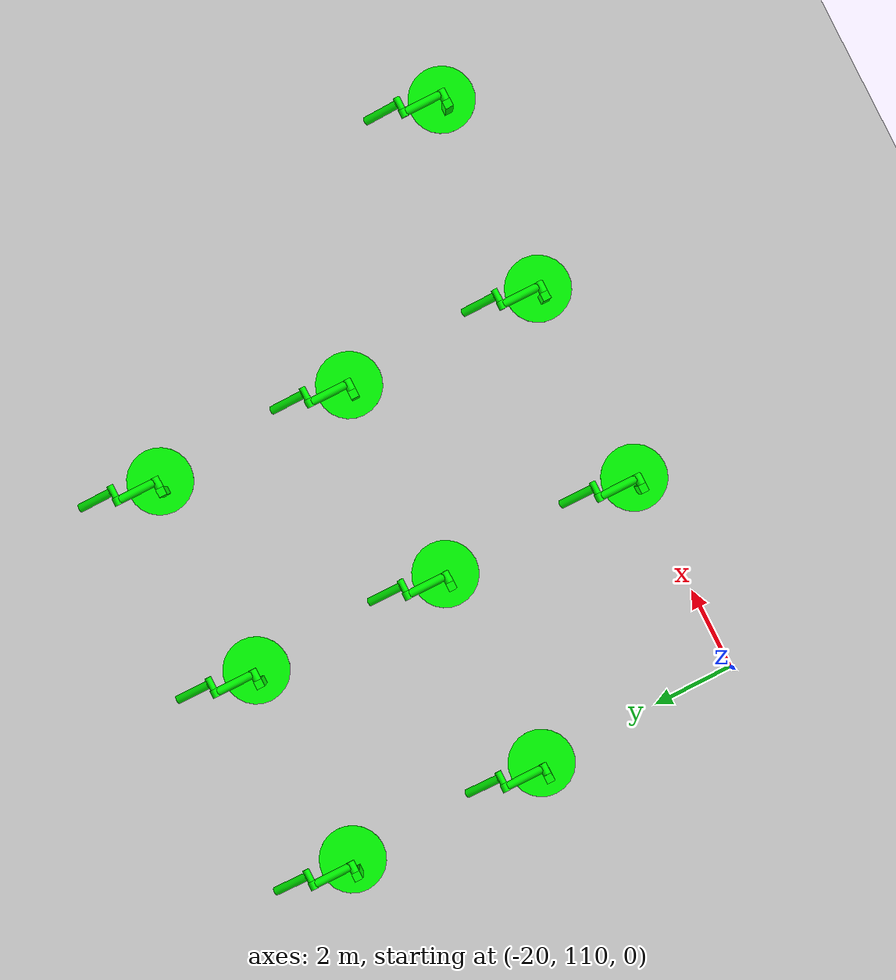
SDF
<sdf version="1.6">
 <world name="double_pendulums">
  <model name="ground_plane">
   <static>true</static>
   <link name="link">
    <collision name="collision">
     <geometry><plane><normal>0 0 1</normal><size>100 100</size></plane></geometry>
    </collision>
    <visual name="visual">
     <geometry><plane><normal>0 0 1</normal><size>100 100</size></plane></geometry>
     <material>
      <ambient>0.8 0.8 0.8 1</ambient>
      <diffuse>0.8 0.8 0.8 1</diffuse>
      <specular>0.8 0.8 0.8 1</specular>
     </material>
    </visual>
   </link>
  </model>
  <model name="dbl_pendulum_557">
   <pose>-15 110 0 0 0 0</pose>
   <link name="base">
    <inertial><mass>100</mass></inertial>
    <visual name="vis_plate_on_ground">
     <pose>0 0 0.01 0 0 0</pose>
     <geometry><cylinder><radius>0.8</radius><length>0.02</length></cylinder></geometry>
     <material><ambient>0 1 0 1</ambient><diffuse>0 1 0 1</diffuse><specular>0 1 0 1</specular></material>
    </visual>
    <visual name="vis_pole">
     <pose>-0.275 0 1.1 0 0 0</pose>
     <geometry><box><size>0.2 0.2 2.2</size></box></geometry>
     <material><ambient>0 1 0 1</ambient><diffuse>0 1 0 1</diffuse><specular>0 1 0 1</specular></material>
    </visual>
    <collision name="col_plate_on_ground">
     <pose>0 0 0.01 0 0 0</pose>
     <geometry><cylinder><radius>0.8</radius><length>0.02</length></cylinder></geometry>
    </collision>
    <collision name="col_pole">
     <pose>-0.275 0 1.1 0 0 0</pose>
     <geometry><box><size>0.2 0.2 2.2</size></box></geometry>
    </collision>
   </link>
   <link name="upper_link">
    <pose>0 0 2.1 -1.5708 0 0</pose>
    <inertial><pose>0 0 0.5 0 0 0</pose></inertial>
    <visual name="vis_upper_joint">
     <pose>-0.05 0 0 0 1.5708 0</pose>
     <geometry><cylinder><radius>0.1</radius><length>0.3</length></cylinder></geometry>
     <material><ambient>0 1 0 1</ambient><diffuse>0 1 0 1</diffuse><specular>0 1 0 1</specular></material>
    </visual>
    <visual name="vis_lower_joint">
     <pose>0 0 1.0 0 1.5708 0</pose>
     <geometry><cylinder><radius>0.1</radius><length>0.2</length></cylinder></geometry>
     <material><ambient>0 1 0 1</ambient><diffuse>0 1 0 1</diffuse><specular>0 1 0 1</specular></material>
    </visual>
    <visual name="vis_cylinder">
     <pose>0 0 0.5 0 0 0</pose>
     <geometry><cylinder><radius>0.1</radius><length>0.9</length></cylinder></geometry>
     <material><ambient>0 1 0 1</ambient><diffuse>0 1 0 1</diffuse><specular>0 1 0 1</specular></material>
    </visual>
    <collision name="col_upper_joint">
     <pose>-0.05 0 0 0 1.5708 0</pose>
     <geometry><cylinder><radius>0.1</radius><length>0.3</length></cylinder></geometry>
    </collision>
    <collision name="col_lower_joint">
     <pose>0 0 1.0 0 1.5708 0</pose>
     <geometry><cylinder><radius>0.1</radius><length>0.2</length></cylinder></geometry>
    </collision>
    <collision name="col_cylinder">
     <pose>0 0 0.5 0 0 0</pose>
     <geometry><cylinder><radius>0.1</radius><length>0.9</length></cylinder></geometry>
    </collision>
   </link>
   <link name="lower_link">
    <pose>0.25 1.0 2.1 -2 0 0</pose>
    <inertial><pose>0 0 0.5 0 0 0</pose></inertial>
    <visual name="vis_lower_joint">
     <pose>0 0 0 0 1.5708 0</pose>
     <geometry><cylinder><radius>0.08</radius><length>0.3</length></cylinder></geometry>
     <material><ambient>0 1 0 1</ambient><diffuse>0 1 0 1</diffuse><specular>0 1 0 1</specular></material>
    </visual>
    <visual name="vis_cylinder">
     <pose>0 0 0.5 0 0 0</pose>
     <geometry><cylinder><radius>0.1</radius><length>0.9</length></cylinder></geometry>
     <material><ambient>0 1 0 1</ambient><diffuse>0 1 0 1</diffuse><specular>0 1 0 1</specular></material>
    </visual>
    <collision name="col_lower_joint">
     <pose>0 0 0 0 1.5708 0</pose>
     <geometry><cylinder><radius>0.08</radius><length>0.3</length></cylinder></geometry>
    </collision>
    <collision name="col_cylinder">
     <pose>0 0 0.5 0 0 0</pose>
     <geometry><cylinder><radius>0.1</radius><length>0.9</length></cylinder></geometry>
    </collision>
   </link>
   <joint name="upper_joint" type="revolute">
    <parent>base</parent>
    <child>upper_link</child>
    <axis><xyz>1.0 0 0</xyz></axis>
   </joint>
   <joint name="lower_joint" type="revolute">
    <parent>upper_link</parent>
    <child>lower_link</child>
    <axis><xyz>1.0 0 0</xyz></axis>
   </joint>
  </model>
  <model name="dbl_pendulum_558">
   <pose>-10 110 0 0 0 0</pose>
   <link name="base">
    <inertial><mass>100</mass></inertial>
    <visual name="vis_plate_on_ground">
     <pose>0 0 0.01 0 0 0</pose>
     <geometry><cylinder><radius>0.8</radius><length>0.02</length></cylinder></geometry>
     <material><ambient>0 1 0 1</ambient><diffuse>0 1 0 1</diffuse><specular>0 1 0 1</specular></material>
    </visual>
    <visual name="vis_pole">
     <pose>-0.275 0 1.1 0 0 0</pose>
     <geometry><box><size>0.2 0.2 2.2</size></box></geometry>
     <material><ambient>0 1 0 1</ambient><diffuse>0 1 0 1</diffuse><specular>0 1 0 1</specular></material>
    </visual>
    <collision name="col_plate_on_ground">
     <pose>0 0 0.01 0 0 0</pose>
     <geometry><cylinder><radius>0.8</radius><length>0.02</length></cylinder></geometry>
    </collision>
    <collision name="col_pole">
     <pose>-0.275 0 1.1 0 0 0</pose>
     <geometry><box><size>0.2 0.2 2.2</size></box></geometry>
    </collision>
   </link>
   <link name="upper_link">
    <pose>0 0 2.1 -1.5708 0 0</pose>
    <inertial><pose>0 0 0.5 0 0 0</pose></inertial>
    <visual name="vis_upper_joint">
     <pose>-0.05 0 0 0 1.5708 0</pose>
     <geometry><cylinder><radius>0.1</radius><length>0.3</length></cylinder></geometry>
     <material><ambient>0 1 0 1</ambient><diffuse>0 1 0 1</diffuse><specular>0 1 0 1</specular></material>
    </visual>
    <visual name="vis_lower_joint">
     <pose>0 0 1.0 0 1.5708 0</pose>
     <geometry><cylinder><radius>0.1</radius><length>0.2</length></cylinder></geometry>
     <material><ambient>0 1 0 1</ambient><diffuse>0 1 0 1</diffuse><specular>0 1 0 1</specular></material>
    </visual>
    <visual name="vis_cylinder">
     <pose>0 0 0.5 0 0 0</pose>
     <geometry><cylinder><radius>0.1</radius><length>0.9</length></cylinder></geometry>
     <material><ambient>0 1 0 1</ambient><diffuse>0 1 0 1</diffuse><specular>0 1 0 1</specular></material>
    </visual>
    <collision name="col_upper_joint">
     <pose>-0.05 0 0 0 1.5708 0</pose>
     <geometry><cylinder><radius>0.1</radius><length>0.3</length></cylinder></geometry>
    </collision>
    <collision name="col_lower_joint">
     <pose>0 0 1.0 0 1.5708 0</pose>
     <geometry><cylinder><radius>0.1</radius><length>0.2</length></cylinder></geometry>
    </collision>
    <collision name="col_cylinder">
     <pose>0 0 0.5 0 0 0</pose>
     <geometry><cylinder><radius>0.1</radius><length>0.9</length></cylinder></geometry>
    </collision>
   </link>
   <link name="lower_link">
    <pose>0.25 1.0 2.1 -2 0 0</pose>
    <inertial><pose>0 0 0.5 0 0 0</pose></inertial>
    <visual name="vis_lower_joint">
     <pose>0 0 0 0 1.5708 0</pose>
     <geometry><cylinder><radius>0.08</radius><length>0.3</length></cylinder></geometry>
     <material><ambient>0 1 0 1</ambient><diffuse>0 1 0 1</diffuse><specular>0 1 0 1</specular></material>
    </visual>
    <visual name="vis_cylinder">
     <pose>0 0 0.5 0 0 0</pose>
     <geometry><cylinder><radius>0.1</radius><length>0.9</length></cylinder></geometry>
     <material><ambient>0 1 0 1</ambient><diffuse>0 1 0 1</diffuse><specular>0 1 0 1</specular></material>
    </visual>
    <collision name="col_lower_joint">
     <pose>0 0 0 0 1.5708 0</pose>
     <geometry><cylinder><radius>0.08</radius><length>0.3</length></cylinder></geometry>
    </collision>
    <collision name="col_cylinder">
     <pose>0 0 0.5 0 0 0</pose>
     <geometry><cylinder><radius>0.1</radius><length>0.9</length></cylinder></geometry>
    </collision>
   </link>
   <joint name="upper_joint" type="revolute">
    <parent>base</parent>
    <child>upper_link</child>
    <axis><xyz>1.0 0 0</xyz></axis>
   </joint>
   <joint name="lower_joint" type="revolute">
    <parent>upper_link</parent>
    <child>lower_link</child>
    <axis><xyz>1.0 0 0</xyz></axis>
   </joint>
  </model>
  <model name="dbl_pendulum_559">
   <pose>-5 110 0 0 0 0</pose>
   <link name="base">
    <inertial><mass>100</mass></inertial>
    <visual name="vis_plate_on_ground">
     <pose>0 0 0.01 0 0 0</pose>
     <geometry><cylinder><radius>0.8</radius><length>0.02</length></cylinder></geometry>
     <material><ambient>0 1 0 1</ambient><diffuse>0 1 0 1</diffuse><specular>0 1 0 1</specular></material>
    </visual>
    <visual name="vis_pole">
     <pose>-0.275 0 1.1 0 0 0</pose>
     <geometry><box><size>0.2 0.2 2.2</size></box></geometry>
     <material><ambient>0 1 0 1</ambient><diffuse>0 1 0 1</diffuse><specular>0 1 0 1</specular></material>
    </visual>
    <collision name="col_plate_on_ground">
     <pose>0 0 0.01 0 0 0</pose>
     <geometry><cylinder><radius>0.8</radius><length>0.02</length></cylinder></geometry>
    </collision>
    <collision name="col_pole">
     <pose>-0.275 0 1.1 0 0 0</pose>
     <geometry><box><size>0.2 0.2 2.2</size></box></geometry>
    </collision>
   </link>
   <link name="upper_link">
    <pose>0 0 2.1 -1.5708 0 0</pose>
    <inertial><pose>0 0 0.5 0 0 0</pose></inertial>
    <visual name="vis_upper_joint">
     <pose>-0.05 0 0 0 1.5708 0</pose>
     <geometry><cylinder><radius>0.1</radius><length>0.3</length></cylinder></geometry>
     <material><ambient>0 1 0 1</ambient><diffuse>0 1 0 1</diffuse><specular>0 1 0 1</specular></material>
    </visual>
    <visual name="vis_lower_joint">
     <pose>0 0 1.0 0 1.5708 0</pose>
     <geometry><cylinder><radius>0.1</radius><length>0.2</length></cylinder></geometry>
     <material><ambient>0 1 0 1</ambient><diffuse>0 1 0 1</diffuse><specular>0 1 0 1</specular></material>
    </visual>
    <visual name="vis_cylinder">
     <pose>0 0 0.5 0 0 0</pose>
     <geometry><cylinder><radius>0.1</radius><length>0.9</length></cylinder></geometry>
     <material><ambient>0 1 0 1</ambient><diffuse>0 1 0 1</diffuse><specular>0 1 0 1</specular></material>
    </visual>
    <collision name="col_upper_joint">
     <pose>-0.05 0 0 0 1.5708 0</pose>
     <geometry><cylinder><radius>0.1</radius><length>0.3</length></cylinder></geometry>
    </collision>
    <collision name="col_lower_joint">
     <pose>0 0 1.0 0 1.5708 0</pose>
     <geometry><cylinder><radius>0.1</radius><length>0.2</length></cylinder></geometry>
    </collision>
    <collision name="col_cylinder">
     <pose>0 0 0.5 0 0 0</pose>
     <geometry><cylinder><radius>0.1</radius><length>0.9</length></cylinder></geometry>
    </collision>
   </link>
   <link name="lower_link">
    <pose>0.25 1.0 2.1 -2 0 0</pose>
    <inertial><pose>0 0 0.5 0 0 0</pose></inertial>
    <visual name="vis_lower_joint">
     <pose>0 0 0 0 1.5708 0</pose>
     <geometry><cylinder><radius>0.08</radius><length>0.3</length></cylinder></geometry>
     <material><ambient>0 1 0 1</ambient><diffuse>0 1 0 1</diffuse><specular>0 1 0 1</specular></material>
    </visual>
    <visual name="vis_cylinder">
     <pose>0 0 0.5 0 0 0</pose>
     <geometry><cylinder><radius>0.1</radius><length>0.9</length></cylinder></geometry>
     <material><ambient>0 1 0 1</ambient><diffuse>0 1 0 1</diffuse><specular>0 1 0 1</specular></material>
    </visual>
    <collision name="col_lower_joint">
     <pose>0 0 0 0 1.5708 0</pose>
     <geometry><cylinder><radius>0.08</radius><length>0.3</length></cylinder></geometry>
    </collision>
    <collision name="col_cylinder">
     <pose>0 0 0.5 0 0 0</pose>
     <geometry><cylinder><radius>0.1</radius><length>0.9</length></cylinder></geometry>
    </collision>
   </link>
   <joint name="upper_joint" type="revolute">
    <parent>base</parent>
    <child>upper_link</child>
    <axis><xyz>1.0 0 0</xyz></axis>
   </joint>
   <joint name="lower_joint" type="revolute">
    <parent>upper_link</parent>
    <child>lower_link</child>
    <axis><xyz>1.0 0 0</xyz></axis>
   </joint>
  </model>
  <model name="dbl_pendulum_581">
   <pose>-20 115 0 0 0 0</pose>
   <link name="base">
    <inertial><mass>100</mass></inertial>
    <visual name="vis_plate_on_ground">
     <pose>0 0 0.01 0 0 0</pose>
     <geometry><cylinder><radius>0.8</radius><length>0.02</length></cylinder></geometry>
     <material><ambient>0 1 0 1</ambient><diffuse>0 1 0 1</diffuse><specular>0 1 0 1</specular></material>
    </visual>
    <visual name="vis_pole">
     <pose>-0.275 0 1.1 0 0 0</pose>
     <geometry><box><size>0.2 0.2 2.2</size></box></geometry>
     <material><ambient>0 1 0 1</ambient><diffuse>0 1 0 1</diffuse><specular>0 1 0 1</specular></material>
    </visual>
    <collision name="col_plate_on_ground">
     <pose>0 0 0.01 0 0 0</pose>
     <geometry><cylinder><radius>0.8</radius><length>0.02</length></cylinder></geometry>
    </collision>
    <collision name="col_pole">
     <pose>-0.275 0 1.1 0 0 0</pose>
     <geometry><box><size>0.2 0.2 2.2</size></box></geometry>
    </collision>
   </link>
   <link name="upper_link">
    <pose>0 0 2.1 -1.5708 0 0</pose>
    <inertial><pose>0 0 0.5 0 0 0</pose></inertial>
    <visual name="vis_upper_joint">
     <pose>-0.05 0 0 0 1.5708 0</pose>
     <geometry><cylinder><radius>0.1</radius><length>0.3</length></cylinder></geometry>
     <material><ambient>0 1 0 1</ambient><diffuse>0 1 0 1</diffuse><specular>0 1 0 1</specular></material>
    </visual>
    <visual name="vis_lower_joint">
     <pose>0 0 1.0 0 1.5708 0</pose>
     <geometry><cylinder><radius>0.1</radius><length>0.2</length></cylinder></geometry>
     <material><ambient>0 1 0 1</ambient><diffuse>0 1 0 1</diffuse><specular>0 1 0 1</specular></material>
    </visual>
    <visual name="vis_cylinder">
     <pose>0 0 0.5 0 0 0</pose>
     <geometry><cylinder><radius>0.1</radius><length>0.9</length></cylinder></geometry>
     <material><ambient>0 1 0 1</ambient><diffuse>0 1 0 1</diffuse><specular>0 1 0 1</specular></material>
    </visual>
    <collision name="col_upper_joint">
     <pose>-0.05 0 0 0 1.5708 0</pose>
     <geometry><cylinder><radius>0.1</radius><length>0.3</length></cylinder></geometry>
    </collision>
    <collision name="col_lower_joint">
     <pose>0 0 1.0 0 1.5708 0</pose>
     <geometry><cylinder><radius>0.1</radius><length>0.2</length></cylinder></geometry>
    </collision>
    <collision name="col_cylinder">
     <pose>0 0 0.5 0 0 0</pose>
     <geometry><cylinder><radius>0.1</radius><length>0.9</length></cylinder></geometry>
    </collision>
   </link>
   <link name="lower_link">
    <pose>0.25 1.0 2.1 -2 0 0</pose>
    <inertial><pose>0 0 0.5 0 0 0</pose></inertial>
    <visual name="vis_lower_joint">
     <pose>0 0 0 0 1.5708 0</pose>
     <geometry><cylinder><radius>0.08</radius><length>0.3</length></cylinder></geometry>
     <material><ambient>0 1 0 1</ambient><diffuse>0 1 0 1</diffuse><specular>0 1 0 1</specular></material>
    </visual>
    <visual name="vis_cylinder">
     <pose>0 0 0.5 0 0 0</pose>
     <geometry><cylinder><radius>0.1</radius><length>0.9</length></cylinder></geometry>
     <material><ambient>0 1 0 1</ambient><diffuse>0 1 0 1</diffuse><specular>0 1 0 1</specular></material>
    </visual>
    <collision name="col_lower_joint">
     <pose>0 0 0 0 1.5708 0</pose>
     <geometry><cylinder><radius>0.08</radius><length>0.3</length></cylinder></geometry>
    </collision>
    <collision name="col_cylinder">
     <pose>0 0 0.5 0 0 0</pose>
     <geometry><cylinder><radius>0.1</radius><length>0.9</length></cylinder></geometry>
    </collision>
   </link>
   <joint name="upper_joint" type="revolute">
    <parent>base</parent>
    <child>upper_link</child>
    <axis><xyz>1.0 0 0</xyz></axis>
   </joint>
   <joint name="lower_joint" type="revolute">
    <parent>upper_link</parent>
    <child>lower_link</child>
    <axis><xyz>1.0 0 0</xyz></axis>
   </joint>
  </model>
  <model name="dbl_pendulum_582">
   <pose>-15 115 0 0 0 0</pose>
   <link name="base">
    <inertial><mass>100</mass></inertial>
    <visual name="vis_plate_on_ground">
     <pose>0 0 0.01 0 0 0</pose>
     <geometry><cylinder><radius>0.8</radius><length>0.02</length></cylinder></geometry>
     <material><ambient>0 1 0 1</ambient><diffuse>0 1 0 1</diffuse><specular>0 1 0 1</specular></material>
    </visual>
    <visual name="vis_pole">
     <pose>-0.275 0 1.1 0 0 0</pose>
     <geometry><box><size>0.2 0.2 2.2</size></box></geometry>
     <material><ambient>0 1 0 1</ambient><diffuse>0 1 0 1</diffuse><specular>0 1 0 1</specular></material>
    </visual>
    <collision name="col_plate_on_ground">
     <pose>0 0 0.01 0 0 0</pose>
     <geometry><cylinder><radius>0.8</radius><length>0.02</length></cylinder></geometry>
    </collision>
    <collision name="col_pole">
     <pose>-0.275 0 1.1 0 0 0</pose>
     <geometry><box><size>0.2 0.2 2.2</size></box></geometry>
    </collision>
   </link>
   <link name="upper_link">
    <pose>0 0 2.1 -1.5708 0 0</pose>
    <inertial><pose>0 0 0.5 0 0 0</pose></inertial>
    <visual name="vis_upper_joint">
     <pose>-0.05 0 0 0 1.5708 0</pose>
     <geometry><cylinder><radius>0.1</radius><length>0.3</length></cylinder></geometry>
     <material><ambient>0 1 0 1</ambient><diffuse>0 1 0 1</diffuse><specular>0 1 0 1</specular></material>
    </visual>
    <visual name="vis_lower_joint">
     <pose>0 0 1.0 0 1.5708 0</pose>
     <geometry><cylinder><radius>0.1</radius><length>0.2</length></cylinder></geometry>
     <material><ambient>0 1 0 1</ambient><diffuse>0 1 0 1</diffuse><specular>0 1 0 1</specular></material>
    </visual>
    <visual name="vis_cylinder">
     <pose>0 0 0.5 0 0 0</pose>
     <geometry><cylinder><radius>0.1</radius><length>0.9</length></cylinder></geometry>
     <material><ambient>0 1 0 1</ambient><diffuse>0 1 0 1</diffuse><specular>0 1 0 1</specular></material>
    </visual>
    <collision name="col_upper_joint">
     <pose>-0.05 0 0 0 1.5708 0</pose>
     <geometry><cylinder><radius>0.1</radius><length>0.3</length></cylinder></geometry>
    </collision>
    <collision name="col_lower_joint">
     <pose>0 0 1.0 0 1.5708 0</pose>
     <geometry><cylinder><radius>0.1</radius><length>0.2</length></cylinder></geometry>
    </collision>
    <collision name="col_cylinder">
     <pose>0 0 0.5 0 0 0</pose>
     <geometry><cylinder><radius>0.1</radius><length>0.9</length></cylinder></geometry>
    </collision>
   </link>
   <link name="lower_link">
    <pose>0.25 1.0 2.1 -2 0 0</pose>
    <inertial><pose>0 0 0.5 0 0 0</pose></inertial>
    <visual name="vis_lower_joint">
     <pose>0 0 0 0 1.5708 0</pose>
     <geometry><cylinder><radius>0.08</radius><length>0.3</length></cylinder></geometry>
     <material><ambient>0 1 0 1</ambient><diffuse>0 1 0 1</diffuse><specular>0 1 0 1</specular></material>
    </visual>
    <visual name="vis_cylinder">
     <pose>0 0 0.5 0 0 0</pose>
     <geometry><cylinder><radius>0.1</radius><length>0.9</length></cylinder></geometry>
     <material><ambient>0 1 0 1</ambient><diffuse>0 1 0 1</diffuse><specular>0 1 0 1</specular></material>
    </visual>
    <collision name="col_lower_joint">
     <pose>0 0 0 0 1.5708 0</pose>
     <geometry><cylinder><radius>0.08</radius><length>0.3</length></cylinder></geometry>
    </collision>
    <collision name="col_cylinder">
     <pose>0 0 0.5 0 0 0</pose>
     <geometry><cylinder><radius>0.1</radius><length>0.9</length></cylinder></geometry>
    </collision>
   </link>
   <joint name="upper_joint" type="revolute">
    <parent>base</parent>
    <child>upper_link</child>
    <axis><xyz>1.0 0 0</xyz></axis>
   </joint>
   <joint name="lower_joint" type="revolute">
    <parent>upper_link</parent>
    <child>lower_link</child>
    <axis><xyz>1.0 0 0</xyz></axis>
   </joint>
  </model>
  <model name="dbl_pendulum_583">
   <pose>-10 115 0 0 0 0</pose>
   <link name="base">
    <inertial><mass>100</mass></inertial>
    <visual name="vis_plate_on_ground">
     <pose>0 0 0.01 0 0 0</pose>
     <geometry><cylinder><radius>0.8</radius><length>0.02</length></cylinder></geometry>
     <material><ambient>0 1 0 1</ambient><diffuse>0 1 0 1</diffuse><specular>0 1 0 1</specular></material>
    </visual>
    <visual name="vis_pole">
     <pose>-0.275 0 1.1 0 0 0</pose>
     <geometry><box><size>0.2 0.2 2.2</size></box></geometry>
     <material><ambient>0 1 0 1</ambient><diffuse>0 1 0 1</diffuse><specular>0 1 0 1</specular></material>
    </visual>
    <collision name="col_plate_on_ground">
     <pose>0 0 0.01 0 0 0</pose>
     <geometry><cylinder><radius>0.8</radius><length>0.02</length></cylinder></geometry>
    </collision>
    <collision name="col_pole">
     <pose>-0.275 0 1.1 0 0 0</pose>
     <geometry><box><size>0.2 0.2 2.2</size></box></geometry>
    </collision>
   </link>
   <link name="upper_link">
    <pose>0 0 2.1 -1.5708 0 0</pose>
    <inertial><pose>0 0 0.5 0 0 0</pose></inertial>
    <visual name="vis_upper_joint">
     <pose>-0.05 0 0 0 1.5708 0</pose>
     <geometry><cylinder><radius>0.1</radius><length>0.3</length></cylinder></geometry>
     <material><ambient>0 1 0 1</ambient><diffuse>0 1 0 1</diffuse><specular>0 1 0 1</specular></material>
    </visual>
    <visual name="vis_lower_joint">
     <pose>0 0 1.0 0 1.5708 0</pose>
     <geometry><cylinder><radius>0.1</radius><length>0.2</length></cylinder></geometry>
     <material><ambient>0 1 0 1</ambient><diffuse>0 1 0 1</diffuse><specular>0 1 0 1</specular></material>
    </visual>
    <visual name="vis_cylinder">
     <pose>0 0 0.5 0 0 0</pose>
     <geometry><cylinder><radius>0.1</radius><length>0.9</length></cylinder></geometry>
     <material><ambient>0 1 0 1</ambient><diffuse>0 1 0 1</diffuse><specular>0 1 0 1</specular></material>
    </visual>
    <collision name="col_upper_joint">
     <pose>-0.05 0 0 0 1.5708 0</pose>
     <geometry><cylinder><radius>0.1</radius><length>0.3</length></cylinder></geometry>
    </collision>
    <collision name="col_lower_joint">
     <pose>0 0 1.0 0 1.5708 0</pose>
     <geometry><cylinder><radius>0.1</radius><length>0.2</length></cylinder></geometry>
    </collision>
    <collision name="col_cylinder">
     <pose>0 0 0.5 0 0 0</pose>
     <geometry><cylinder><radius>0.1</radius><length>0.9</length></cylinder></geometry>
    </collision>
   </link>
   <link name="lower_link">
    <pose>0.25 1.0 2.1 -2 0 0</pose>
    <inertial><pose>0 0 0.5 0 0 0</pose></inertial>
    <visual name="vis_lower_joint">
     <pose>0 0 0 0 1.5708 0</pose>
     <geometry><cylinder><radius>0.08</radius><length>0.3</length></cylinder></geometry>
     <material><ambient>0 1 0 1</ambient><diffuse>0 1 0 1</diffuse><specular>0 1 0 1</specular></material>
    </visual>
    <visual name="vis_cylinder">
     <pose>0 0 0.5 0 0 0</pose>
     <geometry><cylinder><radius>0.1</radius><length>0.9</length></cylinder></geometry>
     <material><ambient>0 1 0 1</ambient><diffuse>0 1 0 1</diffuse><specular>0 1 0 1</specular></material>
    </visual>
    <collision name="col_lower_joint">
     <pose>0 0 0 0 1.5708 0</pose>
     <geometry><cylinder><radius>0.08</radius><length>0.3</length></cylinder></geometry>
    </collision>
    <collision name="col_cylinder">
     <pose>0 0 0.5 0 0 0</pose>
     <geometry><cylinder><radius>0.1</radius><length>0.9</length></cylinder></geometry>
    </collision>
   </link>
   <joint name="upper_joint" type="revolute">
    <parent>base</parent>
    <child>upper_link</child>
    <axis><xyz>1.0 0 0</xyz></axis>
   </joint>
   <joint name="lower_joint" type="revolute">
    <parent>upper_link</parent>
    <child>lower_link</child>
    <axis><xyz>1.0 0 0</xyz></axis>
   </joint>
  </model>
  <model name="dbl_pendulum_606">
   <pose>-20 120 0 0 0 0</pose>
   <link name="base">
    <inertial><mass>100</mass></inertial>
    <visual name="vis_plate_on_ground">
     <pose>0 0 0.01 0 0 0</pose>
     <geometry><cylinder><radius>0.8</radius><length>0.02</length></cylinder></geometry>
     <material><ambient>0 1 0 1</ambient><diffuse>0 1 0 1</diffuse><specular>0 1 0 1</specular></material>
    </visual>
    <visual name="vis_pole">
     <pose>-0.275 0 1.1 0 0 0</pose>
     <geometry><box><size>0.2 0.2 2.2</size></box></geometry>
     <material><ambient>0 1 0 1</ambient><diffuse>0 1 0 1</diffuse><specular>0 1 0 1</specular></material>
    </visual>
    <collision name="col_plate_on_ground">
     <pose>0 0 0.01 0 0 0</pose>
     <geometry><cylinder><radius>0.8</radius><length>0.02</length></cylinder></geometry>
    </collision>
    <collision name="col_pole">
     <pose>-0.275 0 1.1 0 0 0</pose>
     <geometry><box><size>0.2 0.2 2.2</size></box></geometry>
    </collision>
   </link>
   <link name="upper_link">
    <pose>0 0 2.1 -1.5708 0 0</pose>
    <inertial><pose>0 0 0.5 0 0 0</pose></inertial>
    <visual name="vis_upper_joint">
     <pose>-0.05 0 0 0 1.5708 0</pose>
     <geometry><cylinder><radius>0.1</radius><length>0.3</length></cylinder></geometry>
     <material><ambient>0 1 0 1</ambient><diffuse>0 1 0 1</diffuse><specular>0 1 0 1</specular></material>
    </visual>
    <visual name="vis_lower_joint">
     <pose>0 0 1.0 0 1.5708 0</pose>
     <geometry><cylinder><radius>0.1</radius><length>0.2</length></cylinder></geometry>
     <material><ambient>0 1 0 1</ambient><diffuse>0 1 0 1</diffuse><specular>0 1 0 1</specular></material>
    </visual>
    <visual name="vis_cylinder">
     <pose>0 0 0.5 0 0 0</pose>
     <geometry><cylinder><radius>0.1</radius><length>0.9</length></cylinder></geometry>
     <material><ambient>0 1 0 1</ambient><diffuse>0 1 0 1</diffuse><specular>0 1 0 1</specular></material>
    </visual>
    <collision name="col_upper_joint">
     <pose>-0.05 0 0 0 1.5708 0</pose>
     <geometry><cylinder><radius>0.1</radius><length>0.3</length></cylinder></geometry>
    </collision>
    <collision name="col_lower_joint">
     <pose>0 0 1.0 0 1.5708 0</pose>
     <geometry><cylinder><radius>0.1</radius><length>0.2</length></cylinder></geometry>
    </collision>
    <collision name="col_cylinder">
     <pose>0 0 0.5 0 0 0</pose>
     <geometry><cylinder><radius>0.1</radius><length>0.9</length></cylinder></geometry>
    </collision>
   </link>
   <link name="lower_link">
    <pose>0.25 1.0 2.1 -2 0 0</pose>
    <inertial><pose>0 0 0.5 0 0 0</pose></inertial>
    <visual name="vis_lower_joint">
     <pose>0 0 0 0 1.5708 0</pose>
     <geometry><cylinder><radius>0.08</radius><length>0.3</length></cylinder></geometry>
     <material><ambient>0 1 0 1</ambient><diffuse>0 1 0 1</diffuse><specular>0 1 0 1</specular></material>
    </visual>
    <visual name="vis_cylinder">
     <pose>0 0 0.5 0 0 0</pose>
     <geometry><cylinder><radius>0.1</radius><length>0.9</length></cylinder></geometry>
     <material><ambient>0 1 0 1</ambient><diffuse>0 1 0 1</diffuse><specular>0 1 0 1</specular></material>
    </visual>
    <collision name="col_lower_joint">
     <pose>0 0 0 0 1.5708 0</pose>
     <geometry><cylinder><radius>0.08</radius><length>0.3</length></cylinder></geometry>
    </collision>
    <collision name="col_cylinder">
     <pose>0 0 0.5 0 0 0</pose>
     <geometry><cylinder><radius>0.1</radius><length>0.9</length></cylinder></geometry>
    </collision>
   </link>
   <joint name="upper_joint" type="revolute">
    <parent>base</parent>
    <child>upper_link</child>
    <axis><xyz>1.0 0 0</xyz></axis>
   </joint>
   <joint name="lower_joint" type="revolute">
    <parent>upper_link</parent>
    <child>lower_link</child>
    <axis><xyz>1.0 0 0</xyz></axis>
   </joint>
  </model>
  <model name="dbl_pendulum_607">
   <pose>-15 120 0 0 0 0</pose>
   <link name="base">
    <inertial><mass>100</mass></inertial>
    <visual name="vis_plate_on_ground">
     <pose>0 0 0.01 0 0 0</pose>
     <geometry><cylinder><radius>0.8</radius><length>0.02</length></cylinder></geometry>
     <material><ambient>0 1 0 1</ambient><diffuse>0 1 0 1</diffuse><specular>0 1 0 1</specular></material>
    </visual>
    <visual name="vis_pole">
     <pose>-0.275 0 1.1 0 0 0</pose>
     <geometry><box><size>0.2 0.2 2.2</size></box></geometry>
     <material><ambient>0 1 0 1</ambient><diffuse>0 1 0 1</diffuse><specular>0 1 0 1</specular></material>
    </visual>
    <collision name="col_plate_on_ground">
     <pose>0 0 0.01 0 0 0</pose>
     <geometry><cylinder><radius>0.8</radius><length>0.02</length></cylinder></geometry>
    </collision>
    <collision name="col_pole">
     <pose>-0.275 0 1.1 0 0 0</pose>
     <geometry><box><size>0.2 0.2 2.2</size></box></geometry>
    </collision>
   </link>
   <link name="upper_link">
    <pose>0 0 2.1 -1.5708 0 0</pose>
    <inertial><pose>0 0 0.5 0 0 0</pose></inertial>
    <visual name="vis_upper_joint">
     <pose>-0.05 0 0 0 1.5708 0</pose>
     <geometry><cylinder><radius>0.1</radius><length>0.3</length></cylinder></geometry>
     <material><ambient>0 1 0 1</ambient><diffuse>0 1 0 1</diffuse><specular>0 1 0 1</specular></material>
    </visual>
    <visual name="vis_lower_joint">
     <pose>0 0 1.0 0 1.5708 0</pose>
     <geometry><cylinder><radius>0.1</radius><length>0.2</length></cylinder></geometry>
     <material><ambient>0 1 0 1</ambient><diffuse>0 1 0 1</diffuse><specular>0 1 0 1</specular></material>
    </visual>
    <visual name="vis_cylinder">
     <pose>0 0 0.5 0 0 0</pose>
     <geometry><cylinder><radius>0.1</radius><length>0.9</length></cylinder></geometry>
     <material><ambient>0 1 0 1</ambient><diffuse>0 1 0 1</diffuse><specular>0 1 0 1</specular></material>
    </visual>
    <collision name="col_upper_joint">
     <pose>-0.05 0 0 0 1.5708 0</pose>
     <geometry><cylinder><radius>0.1</radius><length>0.3</length></cylinder></geometry>
    </collision>
    <collision name="col_lower_joint">
     <pose>0 0 1.0 0 1.5708 0</pose>
     <geometry><cylinder><radius>0.1</radius><length>0.2</length></cylinder></geometry>
    </collision>
    <collision name="col_cylinder">
     <pose>0 0 0.5 0 0 0</pose>
     <geometry><cylinder><radius>0.1</radius><length>0.9</length></cylinder></geometry>
    </collision>
   </link>
   <link name="lower_link">
    <pose>0.25 1.0 2.1 -2 0 0</pose>
    <inertial><pose>0 0 0.5 0 0 0</pose></inertial>
    <visual name="vis_lower_joint">
     <pose>0 0 0 0 1.5708 0</pose>
     <geometry><cylinder><radius>0.08</radius><length>0.3</length></cylinder></geometry>
     <material><ambient>0 1 0 1</ambient><diffuse>0 1 0 1</diffuse><specular>0 1 0 1</specular></material>
    </visual>
    <visual name="vis_cylinder">
     <pose>0 0 0.5 0 0 0</pose>
     <geometry><cylinder><radius>0.1</radius><length>0.9</length></cylinder></geometry>
     <material><ambient>0 1 0 1</ambient><diffuse>0 1 0 1</diffuse><specular>0 1 0 1</specular></material>
    </visual>
    <collision name="col_lower_joint">
     <pose>0 0 0 0 1.5708 0</pose>
     <geometry><cylinder><radius>0.08</radius><length>0.3</length></cylinder></geometry>
    </collision>
    <collision name="col_cylinder">
     <pose>0 0 0.5 0 0 0</pose>
     <geometry><cylinder><radius>0.1</radius><length>0.9</length></cylinder></geometry>
    </collision>
   </link>
   <joint name="upper_joint" type="revolute">
    <parent>base</parent>
    <child>upper_link</child>
    <axis><xyz>1.0 0 0</xyz></axis>
   </joint>
   <joint name="lower_joint" type="revolute">
    <parent>upper_link</parent>
    <child>lower_link</child>
    <axis><xyz>1.0 0 0</xyz></axis>
   </joint>
  </model>
  <model name="dbl_pendulum_608">
   <pose>-10 120 0 0 0 0</pose>
   <link name="base">
    <inertial><mass>100</mass></inertial>
    <visual name="vis_plate_on_ground">
     <pose>0 0 0.01 0 0 0</pose>
     <geometry><cylinder><radius>0.8</radius><length>0.02</length></cylinder></geometry>
     <material><ambient>0 1 0 1</ambient><diffuse>0 1 0 1</diffuse><specular>0 1 0 1</specular></material>
    </visual>
    <visual name="vis_pole">
     <pose>-0.275 0 1.1 0 0 0</pose>
     <geometry><box><size>0.2 0.2 2.2</size></box></geometry>
     <material><ambient>0 1 0 1</ambient><diffuse>0 1 0 1</diffuse><specular>0 1 0 1</specular></material>
    </visual>
    <collision name="col_plate_on_ground">
     <pose>0 0 0.01 0 0 0</pose>
     <geometry><cylinder><radius>0.8</radius><length>0.02</length></cylinder></geometry>
    </collision>
    <collision name="col_pole">
     <pose>-0.275 0 1.1 0 0 0</pose>
     <geometry><box><size>0.2 0.2 2.2</size></box></geometry>
    </collision>
   </link>
   <link name="upper_link">
    <pose>0 0 2.1 -1.5708 0 0</pose>
    <inertial><pose>0 0 0.5 0 0 0</pose></inertial>
    <visual name="vis_upper_joint">
     <pose>-0.05 0 0 0 1.5708 0</pose>
     <geometry><cylinder><radius>0.1</radius><length>0.3</length></cylinder></geometry>
     <material><ambient>0 1 0 1</ambient><diffuse>0 1 0 1</diffuse><specular>0 1 0 1</specular></material>
    </visual>
    <visual name="vis_lower_joint">
     <pose>0 0 1.0 0 1.5708 0</pose>
     <geometry><cylinder><radius>0.1</radius><length>0.2</length></cylinder></geometry>
     <material><ambient>0 1 0 1</ambient><diffuse>0 1 0 1</diffuse><specular>0 1 0 1</specular></material>
    </visual>
    <visual name="vis_cylinder">
     <pose>0 0 0.5 0 0 0</pose>
     <geometry><cylinder><radius>0.1</radius><length>0.9</length></cylinder></geometry>
     <material><ambient>0 1 0 1</ambient><diffuse>0 1 0 1</diffuse><specular>0 1 0 1</specular></material>
    </visual>
    <collision name="col_upper_joint">
     <pose>-0.05 0 0 0 1.5708 0</pose>
     <geometry><cylinder><radius>0.1</radius><length>0.3</length></cylinder></geometry>
    </collision>
    <collision name="col_lower_joint">
     <pose>0 0 1.0 0 1.5708 0</pose>
     <geometry><cylinder><radius>0.1</radius><length>0.2</length></cylinder></geometry>
    </collision>
    <collision name="col_cylinder">
     <pose>0 0 0.5 0 0 0</pose>
     <geometry><cylinder><radius>0.1</radius><length>0.9</length></cylinder></geometry>
    </collision>
   </link>
   <link name="lower_link">
    <pose>0.25 1.0 2.1 -2 0 0</pose>
    <inertial><pose>0 0 0.5 0 0 0</pose></inertial>
    <visual name="vis_lower_joint">
     <pose>0 0 0 0 1.5708 0</pose>
     <geometry><cylinder><radius>0.08</radius><length>0.3</length></cylinder></geometry>
     <material><ambient>0 1 0 1</ambient><diffuse>0 1 0 1</diffuse><specular>0 1 0 1</specular></material>
    </visual>
    <visual name="vis_cylinder">
     <pose>0 0 0.5 0 0 0</pose>
     <geometry><cylinder><radius>0.1</radius><length>0.9</length></cylinder></geometry>
     <material><ambient>0 1 0 1</ambient><diffuse>0 1 0 1</diffuse><specular>0 1 0 1</specular></material>
    </visual>
    <collision name="col_lower_joint">
     <pose>0 0 0 0 1.5708 0</pose>
     <geometry><cylinder><radius>0.08</radius><length>0.3</length></cylinder></geometry>
    </collision>
    <collision name="col_cylinder">
     <pose>0 0 0.5 0 0 0</pose>
     <geometry><cylinder><radius>0.1</radius><length>0.9</length></cylinder></geometry>
    </collision>
   </link>
   <joint name="upper_joint" type="revolute">
    <parent>base</parent>
    <child>upper_link</child>
    <axis><xyz>1.0 0 0</xyz></axis>
   </joint>
   <joint name="lower_joint" type="revolute">
    <parent>upper_link</parent>
    <child>lower_link</child>
    <axis><xyz>1.0 0 0</xyz></axis>
   </joint>
  </model>
 </world>
</sdf>
